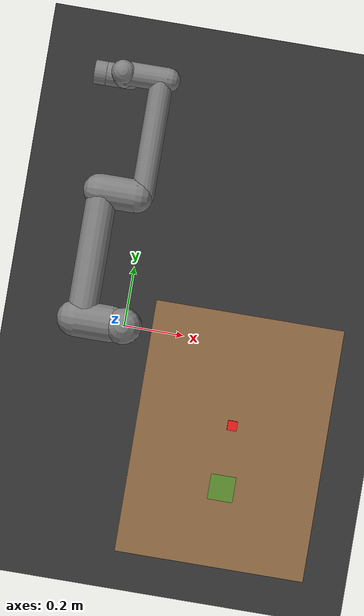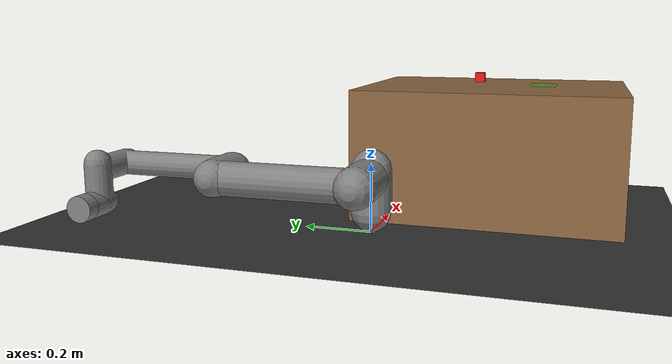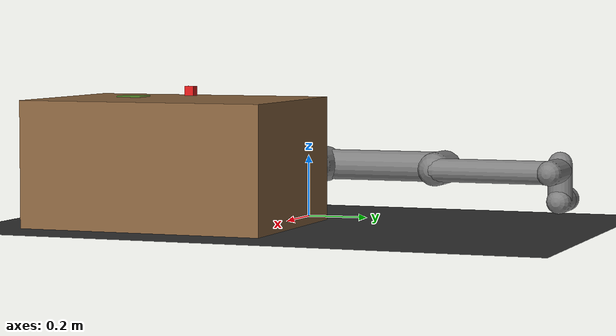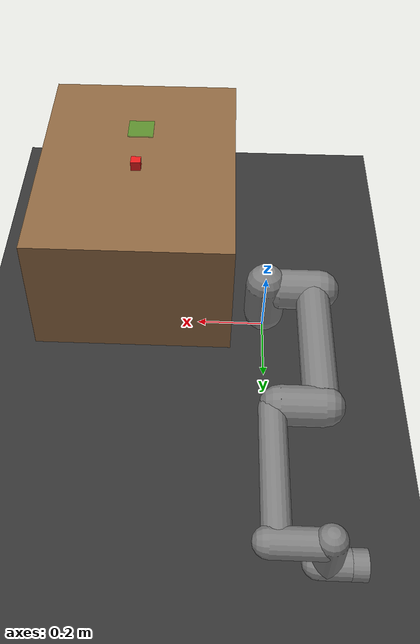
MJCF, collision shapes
<mujoco model="ur5e_pick_place">
  <include file="../mujoco_menagerie/universal_robots_ur5e/ur5e.xml" />

  <statistic center="0.3 0 0.4" extent="0.8" />
  <option timestep="0.002" gravity="0 0 -9.81" integrator="implicitfast" />
  <visual>
    <headlight ambient="0.4 0.4 0.4" diffuse="0.8 0.8 0.8" specular="0.1 0.1 0.1" />
  </visual>

  <worldbody>
    <!-- Floor -->
    <geom name="floor" type="plane" size="2 2 0.01" rgba="0.2 0.2 0.2 1"
          contype="1" conaffinity="1" />
    <light pos="0 0 3" dir="0 0 -1" diffuse="0.8 0.8 0.8" />

    <!-- Table (positioned within UR5 workspace) -->
    <body name="table" pos="0.4 -0.3 0.2">
      <geom name="table_surface" type="box" size="0.3 0.4 0.2"
            rgba="0.55 0.4 0.25 1" contype="1" conaffinity="1"
            friction="0.8 0.005 0.001" />
    </body>

    <!-- Cube to pick -->
    <body name="cube" pos="0.4 -0.25 0.425">
      <freejoint name="cube_joint" />
      <geom name="cube_geom" type="box" size="0.015 0.015 0.015"
            mass="0.05" rgba="0.9 0.1 0.1 1" condim="4"
            friction="1.0 0.005 0.001" contype="1" conaffinity="1" />
    </body>

    <!-- Target zone -->
    <site name="target_zone" pos="0.4 -0.45 0.405" size="0.04 0.04 0.002"
          rgba="0.1 0.8 0.1 0.4" type="box" />

    <!-- Overhead camera -->
    <camera name="overhead" pos="0.4 -0.3 1.3" xyaxes="1 0 0 0 -1 0" fovy="50" />

    <!-- Front camera -->
    <camera name="front" pos="1.0 -0.3 0.7" xyaxes="0 1 0 -0.3 0 1" fovy="50" />

    <!-- Simple parallel-jaw gripper attached to UR5e wrist -->
    <!-- Welded to attachment_site via equality constraint -->
    <body name="gripper_base" pos="0 0 0">
      <body name="ur5_finger_left" pos="0 0.01 0">
        <joint name="ur5_finger_left_joint" type="slide" axis="0 1 0"
               range="0 0.04" damping="5" />
        <geom type="box" size="0.008 0.004 0.03" pos="0 0 0.03"
              rgba="0.5 0.5 0.5 1" friction="1.2 0.005 0.001"
              condim="4" contype="1" conaffinity="1" mass="0.03" />
      </body>
      <body name="ur5_finger_right" pos="0 -0.01 0">
        <joint name="ur5_finger_right_joint" type="slide" axis="0 -1 0"
               range="0 0.04" damping="5" />
        <geom type="box" size="0.008 0.004 0.03" pos="0 0 0.03"
              rgba="0.5 0.5 0.5 1" friction="1.2 0.005 0.001"
              condim="4" contype="1" conaffinity="1" mass="0.03" />
      </body>
    </body>
  </worldbody>

  <!-- Add gripper actuators (arm actuators come from ur5e.xml) -->
  <actuator>
    <position name="ur5_finger_left_pos" joint="ur5_finger_left_joint"
              kp="30" kv="3" ctrlrange="0 0.04" />
    <position name="ur5_finger_right_pos" joint="ur5_finger_right_joint"
              kp="30" kv="3" ctrlrange="0 0.04" />
  </actuator>

  <!-- Weld gripper to UR5e wrist + couple fingers -->
  <equality>
    <weld body1="gripper_base" body2="wrist_3_link" relpose="0 0 0.1 1 0 0 0" />
    <joint joint1="ur5_finger_left_joint" joint2="ur5_finger_right_joint"
           polycoef="0 1 0 0 0" />
  </equality>
</mujoco>

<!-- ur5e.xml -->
<mujoco model="ur5e">
  <compiler angle="radian" meshdir="assets" autolimits="true"/>

  <option integrator="implicitfast"/>

  <default>
    <default class="ur5e">
      <material specular="0.5" shininess="0.25"/>
      <joint axis="0 1 0" range="-6.28319 6.28319" armature="0.1"/>
      <general gaintype="fixed" biastype="affine" ctrlrange="-6.2831 6.2831" gainprm="2000" biasprm="0 -2000 -400"
        forcerange="-150 150"/>
      <default class="size3">
        <default class="size3_limited">
          <joint range="-3.1415 3.1415"/>
          <general ctrlrange="-3.1415 3.1415"/>
        </default>
      </default>
      <default class="size1">
        <general gainprm="500" biasprm="0 -500 -100" forcerange="-28 28"/>
      </default>
      <default class="visual">
        <geom type="mesh" contype="0" conaffinity="0" group="2"/>
      </default>
      <default class="collision">
        <geom type="capsule" group="3"/>
        <default class="eef_collision">
          <geom type="cylinder"/>
        </default>
      </default>
      <site size="0.001" rgba="0.5 0.5 0.5 0.3" group="4"/>
    </default>
  </default>

  <asset>
    <material class="ur5e" name="black" rgba="0.033 0.033 0.033 1"/>
    <material class="ur5e" name="jointgray" rgba="0.278 0.278 0.278 1"/>
    <material class="ur5e" name="linkgray" rgba="0.82 0.82 0.82 1"/>
    <material class="ur5e" name="urblue" rgba="0.49 0.678 0.8 1"/>

    <mesh file="base_0.obj"/>
    <mesh file="base_1.obj"/>
    <mesh file="shoulder_0.obj"/>
    <mesh file="shoulder_1.obj"/>
    <mesh file="shoulder_2.obj"/>
    <mesh file="upperarm_0.obj"/>
    <mesh file="upperarm_1.obj"/>
    <mesh file="upperarm_2.obj"/>
    <mesh file="upperarm_3.obj"/>
    <mesh file="forearm_0.obj"/>
    <mesh file="forearm_1.obj"/>
    <mesh file="forearm_2.obj"/>
    <mesh file="forearm_3.obj"/>
    <mesh file="wrist1_0.obj"/>
    <mesh file="wrist1_1.obj"/>
    <mesh file="wrist1_2.obj"/>
    <mesh file="wrist2_0.obj"/>
    <mesh file="wrist2_1.obj"/>
    <mesh file="wrist2_2.obj"/>
    <mesh file="wrist3.obj"/>
  </asset>

  <worldbody>
    <body name="base" quat="1 0 0 1" childclass="ur5e">
      <inertial mass="4.0" pos="0 0 0" diaginertia="0.00443333156 0.00443333156 0.0072"/>
      <geom mesh="base_0" material="black" class="visual"/>
      <geom mesh="base_1" material="jointgray" class="visual"/>
      <body name="shoulder_link" pos="0 0 0.163">
        <inertial mass="3.7" pos="0 0 0" diaginertia="0.0102675 0.0102675 0.00666"/>
        <joint name="shoulder_pan_joint" class="size3" axis="0 0 1"/>
        <geom mesh="shoulder_0" material="urblue" class="visual"/>
        <geom mesh="shoulder_1" material="black" class="visual"/>
        <geom mesh="shoulder_2" material="jointgray" class="visual"/>
        <geom class="collision" size="0.06 0.06" pos="0 0 -0.04"/>
        <body name="upper_arm_link" pos="0 0.138 0" quat="1 0 1 0">
          <inertial mass="8.393" pos="0 0 0.2125" diaginertia="0.133886 0.133886 0.0151074"/>
          <joint name="shoulder_lift_joint" class="size3"/>
          <geom mesh="upperarm_0" material="linkgray" class="visual"/>
          <geom mesh="upperarm_1" material="black" class="visual"/>
          <geom mesh="upperarm_2" material="jointgray" class="visual"/>
          <geom mesh="upperarm_3" material="urblue" class="visual"/>
          <geom class="collision" pos="0 -0.04 0" quat="1 1 0 0" size="0.06 0.06"/>
          <geom class="collision" size="0.05 0.2" pos="0 0 0.2"/>
          <body name="forearm_link" pos="0 -0.131 0.425">
            <inertial mass="2.275" pos="0 0 0.196" diaginertia="0.0311796 0.0311796 0.004095"/>
            <joint name="elbow_joint" class="size3_limited"/>
            <geom mesh="forearm_0" material="urblue" class="visual"/>
            <geom mesh="forearm_1" material="linkgray" class="visual"/>
            <geom mesh="forearm_2" material="black" class="visual"/>
            <geom mesh="forearm_3" material="jointgray" class="visual"/>
            <geom class="collision" pos="0 0.08 0" quat="1 1 0 0" size="0.055 0.06"/>
            <geom class="collision" size="0.038 0.19" pos="0 0 0.2"/>
            <body name="wrist_1_link" pos="0 0 0.392" quat="1 0 1 0">
              <inertial mass="1.219" pos="0 0.127 0" diaginertia="0.0025599 0.0025599 0.0021942"/>
              <joint name="wrist_1_joint" class="size1"/>
              <geom mesh="wrist1_0" material="black" class="visual"/>
              <geom mesh="wrist1_1" material="urblue" class="visual"/>
              <geom mesh="wrist1_2" material="jointgray" class="visual"/>
              <geom class="collision" pos="0 0.05 0" quat="1 1 0 0" size="0.04 0.07"/>
              <body name="wrist_2_link" pos="0 0.127 0">
                <inertial mass="1.219" pos="0 0 0.1" diaginertia="0.0025599 0.0025599 0.0021942"/>
                <joint name="wrist_2_joint" axis="0 0 1" class="size1"/>
                <geom mesh="wrist2_0" material="black" class="visual"/>
                <geom mesh="wrist2_1" material="urblue" class="visual"/>
                <geom mesh="wrist2_2" material="jointgray" class="visual"/>
                <geom class="collision" size="0.04 0.06" pos="0 0 0.04"/>
                <geom class="collision" pos="0 0.02 0.1" quat="1 1 0 0" size="0.04 0.04"/>
                <body name="wrist_3_link" pos="0 0 0.1">
                  <inertial mass="0.1889" pos="0 0.0771683 0" quat="1 0 0 1"
                    diaginertia="0.000132134 9.90863e-05 9.90863e-05"/>
                  <joint name="wrist_3_joint" class="size1"/>
                  <geom material="linkgray" mesh="wrist3" class="visual"/>
                  <geom class="eef_collision" pos="0 0.08 0" quat="1 1 0 0" size="0.04 0.02"/>
                  <site name="attachment_site" pos="0 0.1 0" quat="-1 1 0 0"/>
                </body>
              </body>
            </body>
          </body>
        </body>
      </body>
    </body>
  </worldbody>

  <actuator>
    <general class="size3" name="shoulder_pan" joint="shoulder_pan_joint"/>
    <general class="size3" name="shoulder_lift" joint="shoulder_lift_joint"/>
    <general class="size3_limited" name="elbow" joint="elbow_joint"/>
    <general class="size1" name="wrist_1" joint="wrist_1_joint"/>
    <general class="size1" name="wrist_2" joint="wrist_2_joint"/>
    <general class="size1" name="wrist_3" joint="wrist_3_joint"/>
  </actuator>

  <keyframe>
    <key name="home" qpos="-1.5708 -1.5708 1.5708 -1.5708 -1.5708 0" ctrl="-1.5708 -1.5708 1.5708 -1.5708 -1.5708 0"/>
  </keyframe>
</mujoco>
